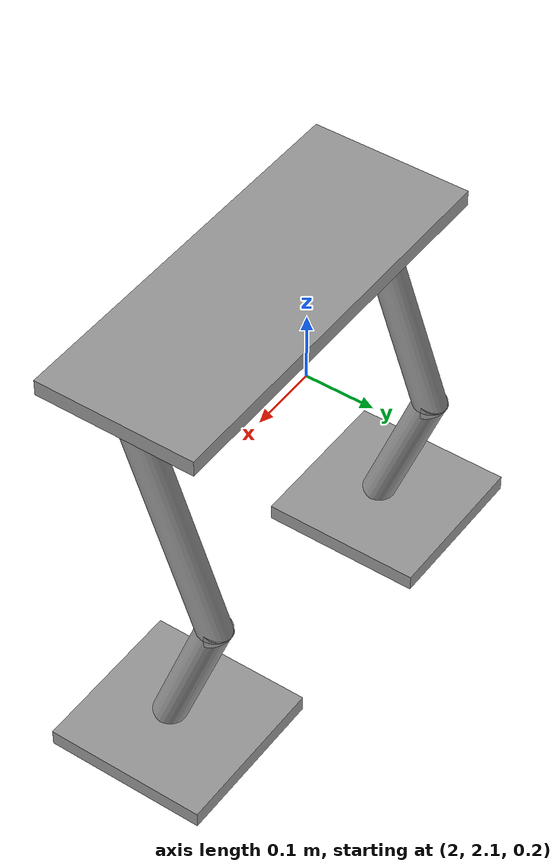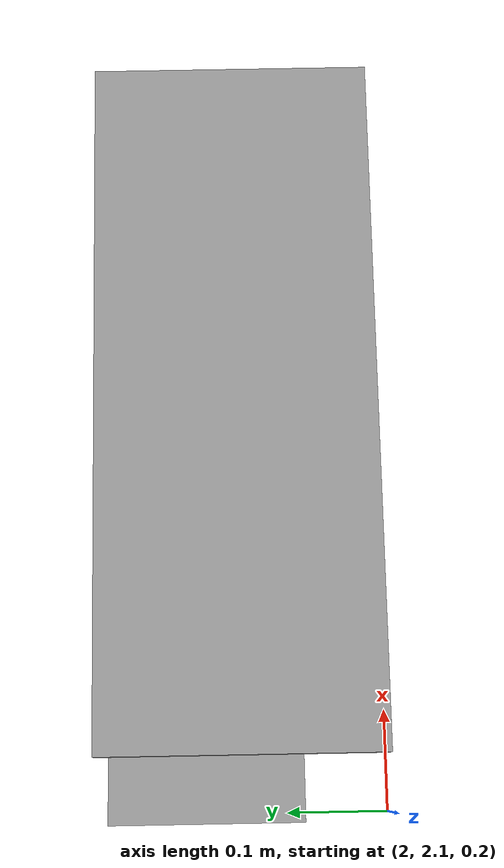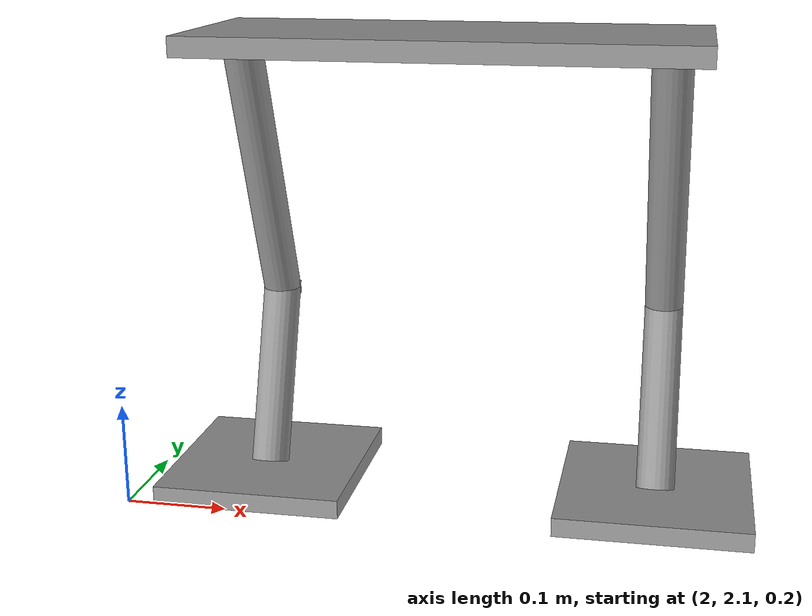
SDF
<?xml version='1.0'?>
<sdf version='1.6'>
  <model name='robot1'>
    <link name='link_0'>
      <pose frame=''>2.29927 2.24421 0.642 0 -0 0</pose>
      <inertial>
        <mass>1</mass>
        <inertia>
          <ixx>0</ixx>
          <ixy>0</ixy>
          <ixz>0</ixz>
          <iyy>0</iyy>
          <iyz>0</iyz>
          <izz>0</izz>
        </inertia>
        <pose frame=''>0 0 0 0 -0 0</pose>
      </inertial>
      <self_collide>0</self_collide>
      <kinematic>0</kinematic>
      <visual name='visual'>
        <pose frame=''>0 0 0 0 -0 0</pose>
        <geometry>
          <box>
            <size>0.5 0.2 0.02</size>
          </box>
        </geometry>
        <material>
          <lighting>1</lighting>
          <script>
            <uri>file://media/materials/scripts/gazebo.material</uri>
            <name>Gazebo/Grey</name>
          </script>
          <shader type='pixel'>
            <normal_map>__default__</normal_map>
          </shader>
          <ambient>0.3 0.3 0.3 1</ambient>
          <diffuse>0.7 0.7 0.7 1</diffuse>
          <specular>0.01 0.01 0.01 1</specular>
          <emissive>0 0 0 1</emissive>
        </material>
        <transparency>0</transparency>
        <cast_shadows>1</cast_shadows>
      </visual>
      <collision name='collision'>
        <laser_retro>0</laser_retro>
        <max_contacts>10</max_contacts>
        <pose frame=''>0 0 0 0 -0 0</pose>
        <geometry>
          <box>
            <size>0.5 0.2 0.02</size>
          </box>
        </geometry>
        <surface>
          <friction>
            <ode>
              <mu>1</mu>
              <mu2>1</mu2>
              <fdir1>0 0 0</fdir1>
              <slip1>0</slip1>
              <slip2>0</slip2>
            </ode>
            <torsional>
              <coefficient>1</coefficient>
              <patch_radius>0</patch_radius>
              <surface_radius>0</surface_radius>
              <use_patch_radius>1</use_patch_radius>
              <ode>
                <slip>0</slip>
              </ode>
            </torsional>
          </friction>
          <bounce>
            <restitution_coefficient>0</restitution_coefficient>
            <threshold>1e+06</threshold>
          </bounce>
          <contact>
            <collide_without_contact>0</collide_without_contact>
            <collide_without_contact_bitmask>1</collide_without_contact_bitmask>
            <collide_bitmask>1</collide_bitmask>
            <ode>
              <soft_cfm>0</soft_cfm>
              <soft_erp>0.2</soft_erp>
              <kp>1e+13</kp>
              <kd>1</kd>
              <max_vel>0.01</max_vel>
              <min_depth>0</min_depth>
            </ode>
            <bullet>
              <split_impulse>1</split_impulse>
              <split_impulse_penetration_threshold>-0.01</split_impulse_penetration_threshold>
              <soft_cfm>0</soft_cfm>
              <soft_erp>0.2</soft_erp>
              <kp>1e+13</kp>
              <kd>1</kd>
            </bullet>
          </contact>
        </surface>
      </collision>
    </link>
    <link name='link_1'>
      <pose frame=''>2.51099 2.28619 0.492 0.35 -0 0</pose>
      <inertial>
        <mass>1</mass>
        <inertia>
          <ixx>0</ixx>
          <ixy>0</ixy>
          <ixz>0</ixz>
          <iyy>0</iyy>
          <iyz>0</iyz>
          <izz>0</izz>
        </inertia>
        <pose frame=''>0 0 0 0 -0 0</pose>
      </inertial>
      <self_collide>0</self_collide>
      <kinematic>0</kinematic>
      <gravity>1</gravity>
      <visual name='visual'>
        <pose frame=''>0 0 0 0 -0 0</pose>
        <geometry>
          <cylinder>
            <radius>0.02</radius>
            <length>0.3</length>
          </cylinder>
        </geometry>
        <material>
          <lighting>1</lighting>
          <script>
            <uri>file://media/materials/scripts/gazebo.material</uri>
            <name>Gazebo/Grey</name>
          </script>
          <shader type='pixel'>
            <normal_map>__default__</normal_map>
          </shader>
          <ambient>0.3 0.3 0.3 1</ambient>
          <diffuse>0.7 0.7 0.7 1</diffuse>
          <specular>0.01 0.01 0.01 1</specular>
          <emissive>0 0 0 1</emissive>
        </material>
        <transparency>0</transparency>
        <cast_shadows>1</cast_shadows>
      </visual>
      <collision name='collision'>
        <laser_retro>0</laser_retro>
        <max_contacts>10</max_contacts>
        <pose frame=''>0 0 0 0 -0 0</pose>
        <geometry>
          <cylinder>
            <radius>0.02</radius>
            <length>0.3</length>
          </cylinder>
        </geometry>
        <surface>
          <friction>
            <ode>
              <mu>1</mu>
              <mu2>1</mu2>
              <fdir1>0 0 0</fdir1>
              <slip1>0</slip1>
              <slip2>0</slip2>
            </ode>
            <torsional>
              <coefficient>1</coefficient>
              <patch_radius>0</patch_radius>
              <surface_radius>0</surface_radius>
              <use_patch_radius>1</use_patch_radius>
              <ode>
                <slip>0</slip>
              </ode>
            </torsional>
          </friction>
          <bounce>
            <restitution_coefficient>0</restitution_coefficient>
            <threshold>1e+06</threshold>
          </bounce>
          <contact>
            <collide_without_contact>0</collide_without_contact>
            <collide_without_contact_bitmask>1</collide_without_contact_bitmask>
            <collide_bitmask>1</collide_bitmask>
            <ode>
              <soft_cfm>0</soft_cfm>
              <soft_erp>0.2</soft_erp>
              <kp>1e+13</kp>
              <kd>1</kd>
              <max_vel>0.01</max_vel>
              <min_depth>0</min_depth>
            </ode>
            <bullet>
              <split_impulse>1</split_impulse>
              <split_impulse_penetration_threshold>-0.01</split_impulse_penetration_threshold>
              <soft_cfm>0</soft_cfm>
              <soft_erp>0.2</soft_erp>
              <kp>1e+13</kp>
              <kd>1</kd>
            </bullet>
          </contact>
        </surface>
      </collision>
    </link>
    <link name='link_1_clone'>
      <pose frame=''>2.09095 2.28619 0.492 0.35 -0 0</pose>
      <inertial>
        <mass>1</mass>
        <inertia>
          <ixx>0</ixx>
          <ixy>0</ixy>
          <ixz>0</ixz>
          <iyy>0</iyy>
          <iyz>0</iyz>
          <izz>0</izz>
        </inertia>
        <pose frame=''>0 0 0 0 -0 0</pose>
      </inertial>
      <self_collide>0</self_collide>
      <kinematic>0</kinematic>
      <gravity>1</gravity>
      <visual name='visual'>
        <pose frame=''>0 0 0 0 -0 0</pose>
        <geometry>
          <cylinder>
            <radius>0.02</radius>
            <length>0.3</length>
          </cylinder>
        </geometry>
        <material>
          <lighting>1</lighting>
          <script>
            <uri>file://media/materials/scripts/gazebo.material</uri>
            <name>Gazebo/Grey</name>
          </script>
          <shader type='pixel'>
            <normal_map>__default__</normal_map>
          </shader>
          <ambient>0.3 0.3 0.3 1</ambient>
          <diffuse>0.7 0.7 0.7 1</diffuse>
          <specular>0.01 0.01 0.01 1</specular>
          <emissive>0 0 0 1</emissive>
        </material>
        <transparency>0</transparency>
        <cast_shadows>1</cast_shadows>
      </visual>
      <collision name='collision'>
        <laser_retro>0</laser_retro>
        <max_contacts>10</max_contacts>
        <pose frame=''>0 0 0 0 -0 0</pose>
        <geometry>
          <cylinder>
            <radius>0.02</radius>
            <length>0.3</length>
          </cylinder>
        </geometry>
        <surface>
          <friction>
            <ode>
              <mu>1</mu>
              <mu2>1</mu2>
              <fdir1>0 0 0</fdir1>
              <slip1>0</slip1>
              <slip2>0</slip2>
            </ode>
            <torsional>
              <coefficient>1</coefficient>
              <patch_radius>0</patch_radius>
              <surface_radius>0</surface_radius>
              <use_patch_radius>1</use_patch_radius>
              <ode>
                <slip>0</slip>
              </ode>
            </torsional>
          </friction>
          <bounce>
            <restitution_coefficient>0</restitution_coefficient>
            <threshold>1e+06</threshold>
          </bounce>
          <contact>
            <collide_without_contact>0</collide_without_contact>
            <collide_without_contact_bitmask>1</collide_without_contact_bitmask>
            <collide_bitmask>1</collide_bitmask>
            <ode>
              <soft_cfm>0</soft_cfm>
              <soft_erp>0.2</soft_erp>
              <kp>1e+13</kp>
              <kd>1</kd>
              <max_vel>0.01</max_vel>
              <min_depth>0</min_depth>
            </ode>
            <bullet>
              <split_impulse>1</split_impulse>
              <split_impulse_penetration_threshold>-0.01</split_impulse_penetration_threshold>
              <soft_cfm>0</soft_cfm>
              <soft_erp>0.2</soft_erp>
              <kp>1e+13</kp>
              <kd>1</kd>
            </bullet>
          </contact>
        </surface>
      </collision>
    </link>
    <link name='link_2'>
      <pose frame=''>2.51099 2.30303 0.272 -0.35 0 0</pose>
      <inertial>
        <mass>1</mass>
        <inertia>
          <ixx>0.145833</ixx>
          <ixy>0</ixy>
          <ixz>0</ixz>
          <iyy>0.145833</iyy>
          <iyz>0</iyz>
          <izz>0.125</izz>
        </inertia>
        <pose frame=''>0 0 0 0 -0 0</pose>
      </inertial>
      <self_collide>0</self_collide>
      <kinematic>0</kinematic>
      <visual name='visual'>
        <pose frame=''>0 0 0 0 -0 0</pose>
        <geometry>
          <cylinder>
            <radius>0.02</radius>
            <length>0.2</length>
          </cylinder>
        </geometry>
        <material>
          <lighting>1</lighting>
          <script>
            <uri>file://media/materials/scripts/gazebo.material</uri>
            <name>Gazebo/Grey</name>
          </script>
          <shader type='pixel'>
            <normal_map>__default__</normal_map>
          </shader>
          <ambient>0.3 0.3 0.3 1</ambient>
          <diffuse>0.7 0.7 0.7 1</diffuse>
          <specular>0.01 0.01 0.01 1</specular>
          <emissive>0 0 0 1</emissive>
        </material>
        <transparency>0</transparency>
        <cast_shadows>1</cast_shadows>
      </visual>
      <collision name='collision'>
        <laser_retro>0</laser_retro>
        <max_contacts>10</max_contacts>
        <pose frame=''>0 0 0 0 -0 0</pose>
        <geometry>
          <cylinder>
            <radius>0.02</radius>
            <length>0.2</length>
          </cylinder>
        </geometry>
        <surface>
          <friction>
            <ode>
              <mu>1</mu>
              <mu2>1</mu2>
              <fdir1>0 0 0</fdir1>
              <slip1>0</slip1>
              <slip2>0</slip2>
            </ode>
            <torsional>
              <coefficient>1</coefficient>
              <patch_radius>0</patch_radius>
              <surface_radius>0</surface_radius>
              <use_patch_radius>1</use_patch_radius>
              <ode>
                <slip>0</slip>
              </ode>
            </torsional>
          </friction>
          <bounce>
            <restitution_coefficient>0</restitution_coefficient>
            <threshold>1e+06</threshold>
          </bounce>
          <contact>
            <collide_without_contact>0</collide_without_contact>
            <collide_without_contact_bitmask>1</collide_without_contact_bitmask>
            <collide_bitmask>1</collide_bitmask>
            <ode>
              <soft_cfm>0</soft_cfm>
              <soft_erp>0.2</soft_erp>
              <kp>1e+13</kp>
              <kd>1</kd>
              <max_vel>0.01</max_vel>
              <min_depth>0</min_depth>
            </ode>
            <bullet>
              <split_impulse>1</split_impulse>
              <split_impulse_penetration_threshold>-0.01</split_impulse_penetration_threshold>
              <soft_cfm>0</soft_cfm>
              <soft_erp>0.2</soft_erp>
              <kp>1e+13</kp>
              <kd>1</kd>
            </bullet>
          </contact>
        </surface>
      </collision>
    </link>
    <link name='link_2_clone'>
      <pose frame=''>2.09095 2.30303 0.272 -0.35 0 0</pose>
      <inertial>
        <mass>1</mass>
        <inertia>
          <ixx>0.145833</ixx>
          <ixy>0</ixy>
          <ixz>0</ixz>
          <iyy>0.145833</iyy>
          <iyz>0</iyz>
          <izz>0.125</izz>
        </inertia>
        <pose frame=''>0 0 0 0 -0 0</pose>
      </inertial>
      <self_collide>0</self_collide>
      <kinematic>0</kinematic>
      <visual name='visual'>
        <pose frame=''>0 0 0 0 -0 0</pose>
        <geometry>
          <cylinder>
            <radius>0.02</radius>
            <length>0.2</length>
          </cylinder>
        </geometry>
        <material>
          <lighting>1</lighting>
          <script>
            <uri>file://media/materials/scripts/gazebo.material</uri>
            <name>Gazebo/Grey</name>
          </script>
          <shader type='pixel'>
            <normal_map>__default__</normal_map>
          </shader>
          <ambient>0.3 0.3 0.3 1</ambient>
          <diffuse>0.7 0.7 0.7 1</diffuse>
          <specular>0.01 0.01 0.01 1</specular>
          <emissive>0 0 0 1</emissive>
        </material>
        <transparency>0</transparency>
        <cast_shadows>1</cast_shadows>
      </visual>
      <collision name='collision'>
        <laser_retro>0</laser_retro>
        <max_contacts>10</max_contacts>
        <pose frame=''>0 0 0 0 -0 0</pose>
        <geometry>
          <cylinder>
            <radius>0.02</radius>
            <length>0.2</length>
          </cylinder>
        </geometry>
        <surface>
          <friction>
            <ode>
              <mu>1</mu>
              <mu2>1</mu2>
              <fdir1>0 0 0</fdir1>
              <slip1>0</slip1>
              <slip2>0</slip2>
            </ode>
            <torsional>
              <coefficient>1</coefficient>
              <patch_radius>0</patch_radius>
              <surface_radius>0</surface_radius>
              <use_patch_radius>1</use_patch_radius>
              <ode>
                <slip>0</slip>
              </ode>
            </torsional>
          </friction>
          <bounce>
            <restitution_coefficient>0</restitution_coefficient>
            <threshold>1e+06</threshold>
          </bounce>
          <contact>
            <collide_without_contact>0</collide_without_contact>
            <collide_without_contact_bitmask>1</collide_without_contact_bitmask>
            <collide_bitmask>1</collide_bitmask>
            <ode>
              <soft_cfm>0</soft_cfm>
              <soft_erp>0.2</soft_erp>
              <kp>1e+13</kp>
              <kd>1</kd>
              <max_vel>0.01</max_vel>
              <min_depth>0</min_depth>
            </ode>
            <bullet>
              <split_impulse>1</split_impulse>
              <split_impulse_penetration_threshold>-0.01</split_impulse_penetration_threshold>
              <soft_cfm>0</soft_cfm>
              <soft_erp>0.2</soft_erp>
              <kp>1e+13</kp>
              <kd>1</kd>
            </bullet>
          </contact>
        </surface>
      </collision>
    </link>
    <link name='link_3'>
      <pose frame=''>2.51099 2.28049 0.167667 0 -0 0</pose>
      <inertial>
        <mass>1</mass>
        <inertia>
          <ixx>0.166667</ixx>
          <ixy>0</ixy>
          <ixz>0</ixz>
          <iyy>0.166667</iyy>
          <iyz>0</iyz>
          <izz>0.166667</izz>
        </inertia>
        <pose frame=''>0 0 0 0 -0 0</pose>
      </inertial>
      <self_collide>0</self_collide>
      <kinematic>0</kinematic>
      <visual name='visual'>
        <pose frame=''>0 0 0 0 -0 0</pose>
        <geometry>
          <box>
            <size>0.2 0.2 0.02</size>
          </box>
        </geometry>
        <material>
          <lighting>1</lighting>
          <script>
            <uri>file://media/materials/scripts/gazebo.material</uri>
            <name>Gazebo/Grey</name>
          </script>
          <shader type='pixel'>
            <normal_map>__default__</normal_map>
          </shader>
          <ambient>0.3 0.3 0.3 1</ambient>
          <diffuse>0.7 0.7 0.7 1</diffuse>
          <specular>0.01 0.01 0.01 1</specular>
          <emissive>0 0 0 1</emissive>
        </material>
        <transparency>0</transparency>
        <cast_shadows>1</cast_shadows>
      </visual>
      <collision name='collision'>
        <laser_retro>0</laser_retro>
        <max_contacts>10</max_contacts>
        <pose frame=''>0 0 0 0 -0 0</pose>
        <geometry>
          <box>
            <size>0.2 0.2 0.02</size>
          </box>
        </geometry>
        <surface>
          <friction>
            <ode>
              <mu>1</mu>
              <mu2>1</mu2>
              <fdir1>0 0 0</fdir1>
              <slip1>0</slip1>
              <slip2>0</slip2>
            </ode>
            <torsional>
              <coefficient>1</coefficient>
              <patch_radius>0</patch_radius>
              <surface_radius>0</surface_radius>
              <use_patch_radius>1</use_patch_radius>
              <ode>
                <slip>0</slip>
              </ode>
            </torsional>
          </friction>
          <bounce>
            <restitution_coefficient>0</restitution_coefficient>
            <threshold>1e+06</threshold>
          </bounce>
          <contact>
            <collide_without_contact>0</collide_without_contact>
            <collide_without_contact_bitmask>1</collide_without_contact_bitmask>
            <collide_bitmask>1</collide_bitmask>
            <ode>
              <soft_cfm>0</soft_cfm>
              <soft_erp>0.2</soft_erp>
              <kp>1e+13</kp>
              <kd>1</kd>
              <max_vel>0.01</max_vel>
              <min_depth>0</min_depth>
            </ode>
            <bullet>
              <split_impulse>1</split_impulse>
              <split_impulse_penetration_threshold>-0.01</split_impulse_penetration_threshold>
              <soft_cfm>0</soft_cfm>
              <soft_erp>0.2</soft_erp>
              <kp>1e+13</kp>
              <kd>1</kd>
            </bullet>
          </contact>
        </surface>
      </collision>
    </link>
    <link name='link_3_clone'>
      <pose frame=''>2.09 2.28049 0.167667 0 -0 0</pose>
      <inertial>
        <mass>1</mass>
        <inertia>
          <ixx>0.166667</ixx>
          <ixy>0</ixy>
          <ixz>0</ixz>
          <iyy>0.166667</iyy>
          <iyz>0</iyz>
          <izz>0.166667</izz>
        </inertia>
        <pose frame=''>0 0 0 0 -0 0</pose>
      </inertial>
      <self_collide>0</self_collide>
      <kinematic>0</kinematic>
      <visual name='visual'>
        <pose frame=''>0 0 0 0 -0 0</pose>
        <geometry>
          <box>
            <size>0.2 0.2 0.02</size>
          </box>
        </geometry>
        <material>
          <lighting>1</lighting>
          <script>
            <uri>file://media/materials/scripts/gazebo.material</uri>
            <name>Gazebo/Grey</name>
          </script>
          <shader type='pixel'>
            <normal_map>__default__</normal_map>
          </shader>
          <ambient>0.3 0.3 0.3 1</ambient>
          <diffuse>0.7 0.7 0.7 1</diffuse>
          <specular>0.01 0.01 0.01 1</specular>
          <emissive>0 0 0 1</emissive>
        </material>
        <transparency>0</transparency>
        <cast_shadows>1</cast_shadows>
      </visual>
      <collision name='collision'>
        <laser_retro>0</laser_retro>
        <max_contacts>10</max_contacts>
        <pose frame=''>0 0 0 0 -0 0</pose>
        <geometry>
          <box>
            <size>0.2 0.2 0.02</size>
          </box>
        </geometry>
        <surface>
          <friction>
            <ode>
              <mu>1</mu>
              <mu2>1</mu2>
              <fdir1>0 0 0</fdir1>
              <slip1>0</slip1>
              <slip2>0</slip2>
            </ode>
            <torsional>
              <coefficient>1</coefficient>
              <patch_radius>0</patch_radius>
              <surface_radius>0</surface_radius>
              <use_patch_radius>1</use_patch_radius>
              <ode>
                <slip>0</slip>
              </ode>
            </torsional>
          </friction>
          <bounce>
            <restitution_coefficient>0</restitution_coefficient>
            <threshold>1e+06</threshold>
          </bounce>
          <contact>
            <collide_without_contact>0</collide_without_contact>
            <collide_without_contact_bitmask>1</collide_without_contact_bitmask>
            <collide_bitmask>1</collide_bitmask>
            <ode>
              <soft_cfm>0</soft_cfm>
              <soft_erp>0.2</soft_erp>
              <kp>1e+13</kp>
              <kd>1</kd>
              <max_vel>0.01</max_vel>
              <min_depth>0</min_depth>
            </ode>
            <bullet>
              <split_impulse>1</split_impulse>
              <split_impulse_penetration_threshold>-0.01</split_impulse_penetration_threshold>
              <soft_cfm>0</soft_cfm>
              <soft_erp>0.2</soft_erp>
              <kp>1e+13</kp>
              <kd>1</kd>
            </bullet>
          </contact>
        </surface>
      </collision>
    </link>
    <joint name='link_0_JOINT_0' type='fixed'>
      <parent>link_0</parent>
      <child>link_1</child>
      <pose frame=''>0 0 0 0 -0 0</pose>
      <physics>
        <ode>
          <limit>
            <cfm>0</cfm>
            <erp>0.2</erp>
          </limit>
          <suspension>
            <cfm>0</cfm>
            <erp>0.2</erp>
          </suspension>
        </ode>
      </physics>
    </joint>
    <joint name='link_0_JOINT_1' type='fixed'>
      <parent>link_0</parent>
      <child>link_1_clone</child>
      <pose frame=''>0 0 0 0 -0 0</pose>
      <physics>
        <ode>
          <limit>
            <cfm>0</cfm>
            <erp>0.2</erp>
          </limit>
          <suspension>
            <cfm>0</cfm>
            <erp>0.2</erp>
          </suspension>
        </ode>
      </physics>
    </joint>
    <joint name='link_1_JOINT_2' type='revolute'>
      <parent>link_1</parent>
      <child>link_2</child>
      <pose frame=''>0 0 0 0 -0 0</pose>
      <axis>
        <xyz>1 0 0</xyz>
        <use_parent_model_frame>0</use_parent_model_frame>
        <limit>
          <lower>-1.79769e+308</lower>
          <upper>1.79769e+308</upper>
          <effort>-1</effort>
          <velocity>-1</velocity>
        </limit>
        <dynamics>
          <spring_reference>0</spring_reference>
          <spring_stiffness>0</spring_stiffness>
          <damping>0</damping>
          <friction>0</friction>
        </dynamics>
      </axis>
      <physics>
        <ode>
          <limit>
            <cfm>0</cfm>
            <erp>0.2</erp>
          </limit>
          <suspension>
            <cfm>0</cfm>
            <erp>0.2</erp>
          </suspension>
        </ode>
      </physics>
    </joint>
    <joint name='link_1_JOINT_4' type='prismatic'>
      <parent>link_1</parent>
      <child>link_2</child>
      <pose frame=''>0 0 0 0 -0 0</pose>
      <axis>
        <xyz>0 1 0</xyz>
        <use_parent_model_frame>0</use_parent_model_frame>
        <limit>
          <lower>-1.79769e+308</lower>
          <upper>1.79769e+308</upper>
          <effort>-1</effort>
          <velocity>-1</velocity>
        </limit>
        <dynamics>
          <spring_reference>0</spring_reference>
          <spring_stiffness>0</spring_stiffness>
          <damping>0</damping>
          <friction>0</friction>
        </dynamics>
      </axis>
      <physics>
        <ode>
          <limit>
            <cfm>0</cfm>
            <erp>0.2</erp>
          </limit>
          <suspension>
            <cfm>0</cfm>
            <erp>0.2</erp>
          </suspension>
        </ode>
      </physics>
    </joint>
    <joint name='link_1_clone_JOINT_3' type='revolute'>
      <parent>link_1_clone</parent>
      <child>link_2_clone</child>
      <pose frame=''>0 0 0 0 -0 0</pose>
      <axis>
        <xyz>1 0 0</xyz>
        <use_parent_model_frame>0</use_parent_model_frame>
        <limit>
          <lower>-1.79769e+308</lower>
          <upper>1.79769e+308</upper>
          <effort>-1</effort>
          <velocity>-1</velocity>
        </limit>
        <dynamics>
          <spring_reference>0</spring_reference>
          <spring_stiffness>0</spring_stiffness>
          <damping>0</damping>
          <friction>0</friction>
        </dynamics>
      </axis>
      <physics>
        <ode>
          <limit>
            <cfm>0</cfm>
            <erp>0.2</erp>
          </limit>
          <suspension>
            <cfm>0</cfm>
            <erp>0.2</erp>
          </suspension>
        </ode>
      </physics>
    </joint>
    <joint name='link_1_clone_JOINT_5' type='prismatic'>
      <parent>link_1_clone</parent>
      <child>link_2_clone</child>
      <pose frame=''>0 0 0 0 -0 0</pose>
      <axis>
        <xyz>0 1 0</xyz>
        <use_parent_model_frame>0</use_parent_model_frame>
        <limit>
          <lower>-1.79769e+308</lower>
          <upper>1.79769e+308</upper>
          <effort>-1</effort>
          <velocity>-1</velocity>
        </limit>
        <dynamics>
          <spring_reference>0</spring_reference>
          <spring_stiffness>0</spring_stiffness>
          <damping>0</damping>
          <friction>0</friction>
        </dynamics>
      </axis>
      <physics>
        <ode>
          <limit>
            <cfm>0</cfm>
            <erp>0.2</erp>
          </limit>
          <suspension>
            <cfm>0</cfm>
            <erp>0.2</erp>
          </suspension>
        </ode>
      </physics>
    </joint>
    <joint name='link_2_JOINT_6' type='fixed'>
      <parent>link_2</parent>
      <child>link_3</child>
      <pose frame=''>0 0 0 0 -0 0</pose>
      <physics>
        <ode>
          <limit>
            <cfm>0</cfm>
            <erp>0.2</erp>
          </limit>
          <suspension>
            <cfm>0</cfm>
            <erp>0.2</erp>
          </suspension>
        </ode>
      </physics>
    </joint>
    <joint name='link_2_clone_JOINT_7' type='fixed'>
      <parent>link_2_clone</parent>
      <child>link_3_clone</child>
      <pose frame=''>0 0 0 0 -0 0</pose>
      <physics>
        <ode>
          <limit>
            <cfm>0</cfm>
            <erp>0.2</erp>
          </limit>
          <suspension>
            <cfm>0</cfm>
            <erp>0.2</erp>
          </suspension>
        </ode>
      </physics>
    </joint>
    <static>0</static>
    <allow_auto_disable>1</allow_auto_disable>
  </model>
</sdf>
